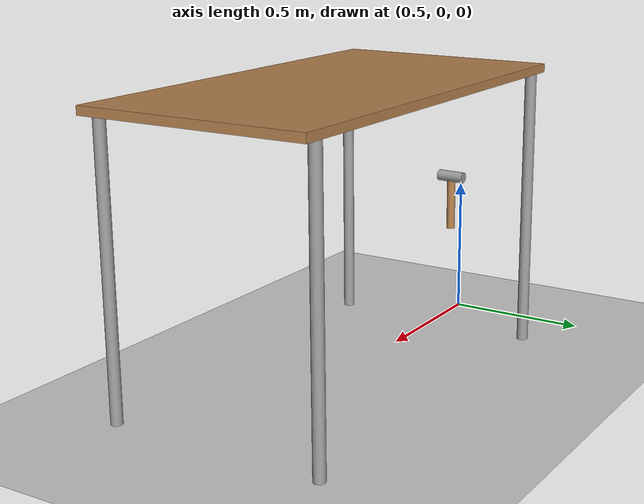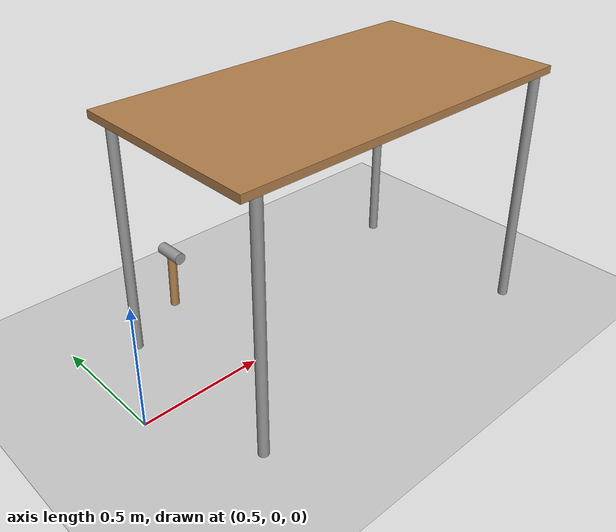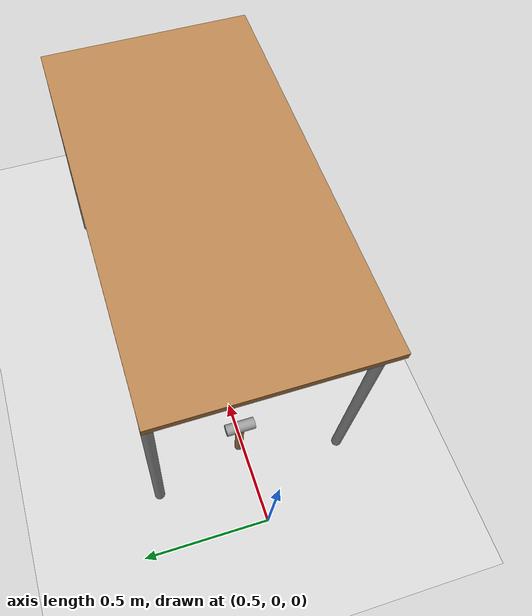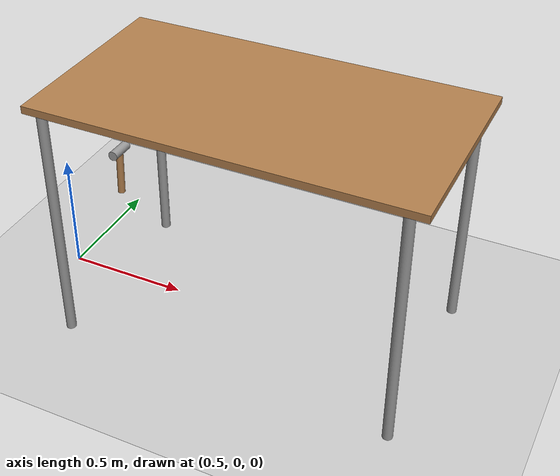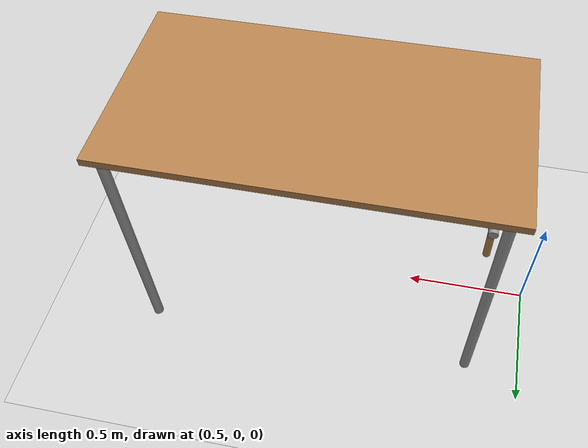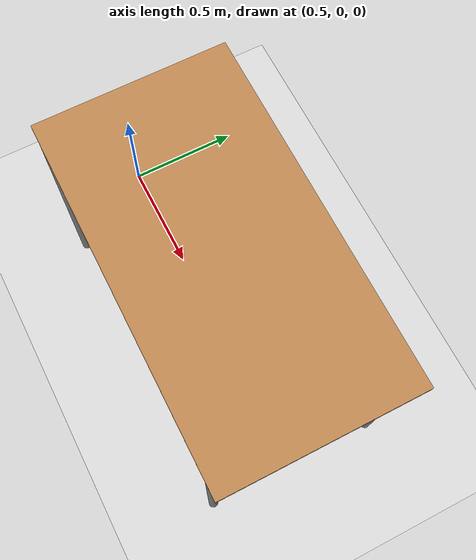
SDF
<?xml version="1.0" ?>
<sdf version="1.4">
	<world name="hammer_setup">
		<!-- A global light source -->
		<include>
			<uri>model://sun</uri>
		</include>
		<!-- A ground plane -->
		<include>
			<uri>model://ground_plane</uri>
		</include>
		<!-- A table to hold things -->
		<include>
			<uri>model://low_table</uri>
			<name>low_table</name>
			<pose>1.4 0 0 0 0 0</pose>
		</include>
		<!-- A table to hold things -->
		<include>
			<uri>model://hammer</uri>
			<name>hammer</name>
			<pose>0.715 0.07 0.48 -0.015544 0.027142 0.000285</pose>
		</include>

		<!-- Shadows disabled -->
		<scene>
			<shadows>0</shadows>
		</scene>

		<!-- Camera position -->
		<gui>
			<camera name="camera1">
				<pose>2.6319 -1.80076 1.48357 0 0.292 2.4</pose>
			</camera>
		</gui>
	</world>
</sdf>

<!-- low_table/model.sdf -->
<sdf version="1.5">
  <model name="low_table">
    <static>true</static>
    <link name="link">
      <collision name="surface">
        <pose>0 0 1.0 0 0 0</pose>
        <geometry>
          <box>
            <size>1.5 0.8 0.03</size>
          </box>
        </geometry>
        <surface>
          <friction>
            <ode>
              <mu>0.6</mu>
              <mu2>0.6</mu2>
            </ode>
          </friction>
        </surface>
      </collision>
      <visual name="visual1">
        <pose>0 0 1.0 0 0 0</pose>
        <geometry>
          <box>
            <size>1.5 0.8 0.03</size>
          </box>
        </geometry>
        <material>
          <script>
            <uri>file://media/materials/scripts/gazebo.material</uri>
            <name>Gazebo/Wood</name>
          </script>
        </material>
      </visual>
      <collision name="front_left_leg">
        <pose>0.68 0.38 0.5 0 0 0</pose>
        <geometry>
          <cylinder>
            <radius>0.02</radius>
            <length>1.0</length>
          </cylinder>
        </geometry>
      </collision>
      <visual name="front_left_leg">
        <pose>0.68 0.38 0.5 0 0 0</pose>
        <geometry>
          <cylinder>
            <radius>0.02</radius>
            <length>1.0</length>
          </cylinder>
        </geometry>
        <material>
          <script>
            <uri>file://media/materials/scripts/gazebo.material</uri>
            <name>Gazebo/Grey</name>
          </script>
        </material>
      </visual>
      <collision name="front_right_leg">
        <pose>0.68 -0.38 0.5 0 0 0</pose>
        <geometry>
          <cylinder>
            <radius>0.02</radius>
            <length>1.0</length>
          </cylinder>
        </geometry>
      </collision>
      <visual name="front_right_leg">
        <pose>0.68 -0.38 0.5 0 0 0</pose>
        <geometry>
          <cylinder>
            <radius>0.02</radius>
            <length>1.0</length>
          </cylinder>
        </geometry>
        <material>
          <script>
            <uri>file://media/materials/scripts/gazebo.material</uri>
            <name>Gazebo/Grey</name>
          </script>
        </material>
      </visual>
      <collision name="back_right_leg">
        <pose>-0.68 -0.38 0.5 0 0 0</pose>
        <geometry>
          <cylinder>
            <radius>0.02</radius>
            <length>1.0</length>
          </cylinder>
        </geometry>
      </collision>
      <visual name="back_right_leg">
        <pose>-0.68 -0.38 0.5 0 0 0</pose>
        <geometry>
          <cylinder>
            <radius>0.02</radius>
            <length>1.0</length>
          </cylinder>
        </geometry>
        <material>
          <script>
            <uri>file://media/materials/scripts/gazebo.material</uri>
            <name>Gazebo/Grey</name>
          </script>
        </material>
      </visual>
      <collision name="back_left_leg">
        <pose>-0.68 0.38 0.5 0 0 0</pose>
        <geometry>
          <cylinder>
            <radius>0.02</radius>
            <length>1.0</length>
          </cylinder>
        </geometry>
      </collision>
      <visual name="back_left_leg">
        <pose>-0.68 0.38 0.5 0 0 0</pose>
        <geometry>
          <cylinder>
            <radius>0.02</radius>
            <length>1.0</length>
          </cylinder>
        </geometry>
        <material>
          <script>
            <uri>file://media/materials/scripts/gazebo.material</uri>
            <name>Gazebo/Grey</name>
          </script>
        </material>
      </visual>
    </link>
  </model>
</sdf>

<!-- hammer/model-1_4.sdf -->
<sdf version="1.4">
	<model name="hammer">
		<static>false</static>
		<link name="link">
			<pose>0 0 0 0 0 0</pose>
			<inertial>
				<mass>0.390</mass>
				<inertia>
					<ixx>0.00058</ixx>
					<ixy>0</ixy>
					<ixz>0</ixz>
					<iyy>0.00058</iyy>
					<iyz>0</iyz>
					<izz>0.00019</izz>
				</inertia>
			</inertial>
			<collision name="shaft">
				<pose>0 0 0 0 0 0</pose>
				<geometry>
					<cylinder>
						<radius>0.015</radius>
						<length>0.2</length>
					</cylinder>
				</geometry>
			</collision>
			<visual name="visual_shaft">
				<pose>0 0 0 0 0 0</pose>
				<geometry>
					<cylinder>
						<radius>0.015</radius>
						<length>0.2</length>
					</cylinder>
				</geometry>
				<material>
					<script>
						<uri>file://media/materials/scripts/gazebo.material</uri>
						<name>Gazebo/Wood</name>
					</script>
				</material>
			</visual>
			<collision name="head">
				<pose>0 0 0.1 1.57 0 0</pose>
				<geometry>
					<cylinder>
						<radius>0.02</radius>
						<length>0.1</length>
					</cylinder>
				</geometry>
			</collision>
			<visual name="visual_head">
				<pose>0 0 0.1 1.57 0 0</pose>
				<geometry>
					<cylinder>
						<radius>0.02</radius>
						<length>0.1</length>
					</cylinder>
				</geometry>
				<material>
					<script>
						<uri>file://media/materials/scripts/gazebo.material</uri>
						<name>Gazebo/Grey</name>
					</script>
				</material>
			</visual>
		</link>
	</model>
</sdf>
